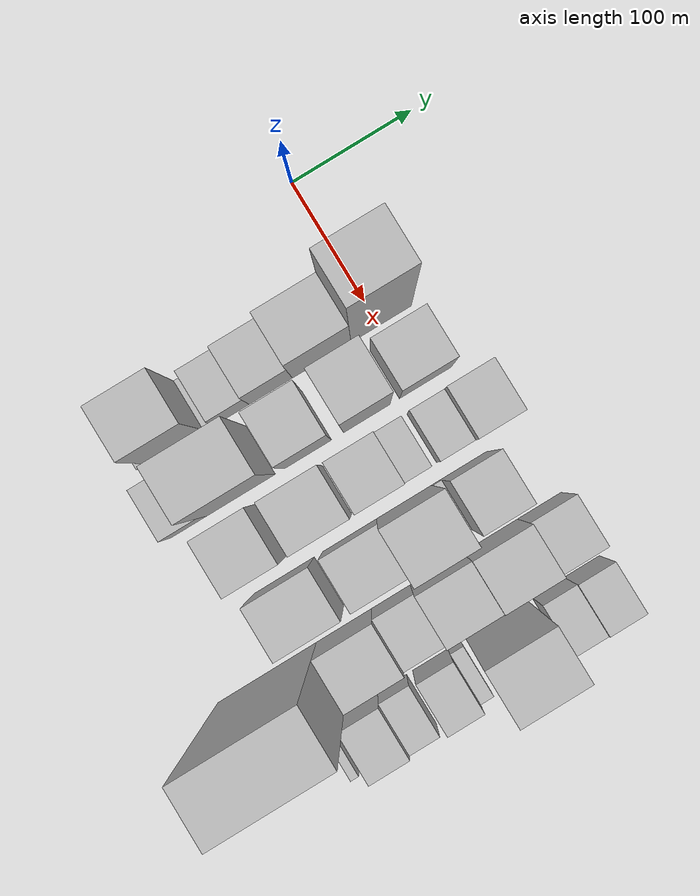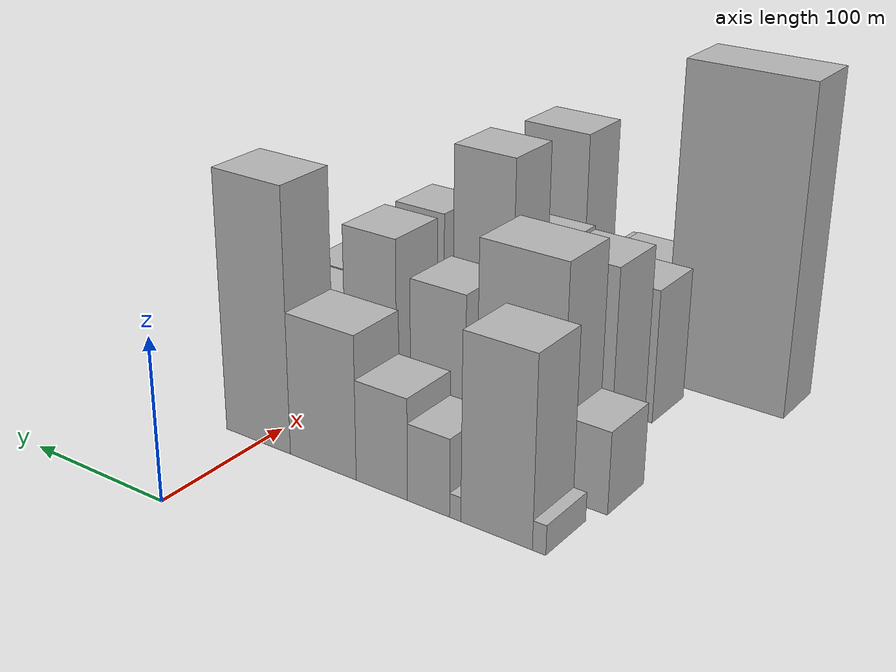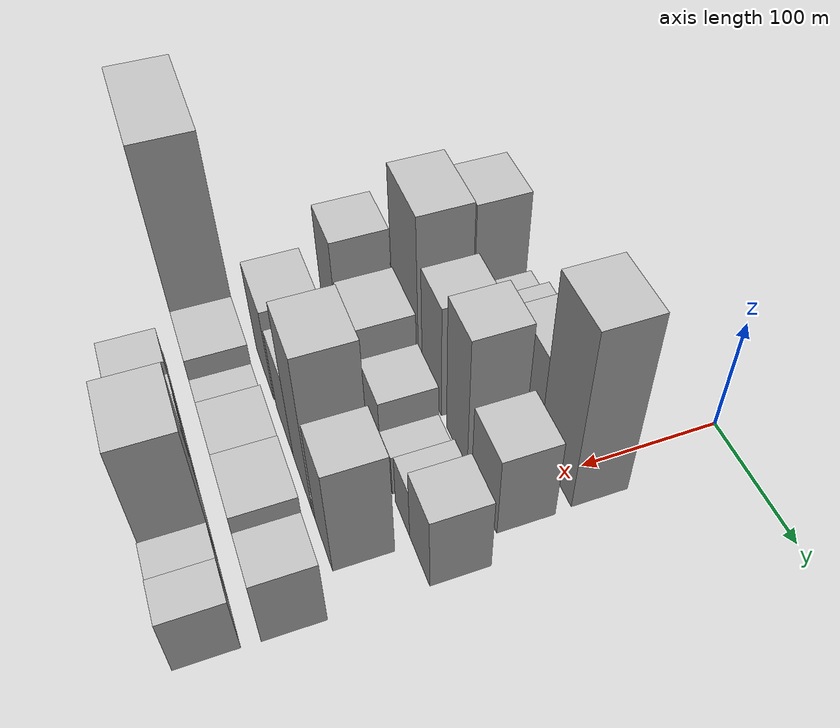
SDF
<sdf version="1.6">
 <world name="default">
  <model name="building_16">
   <static>1</static>
   <pose>100.0000 -192.9283 0 0.000000 0.000000 0.000000</pose>
   <link name="link">
    <pose>0 0 9.00 0 0 0</pose>
    <collision name="collision"><geometry><box><size>40.0000 8.1729 18.0000</size></box></geometry></collision>
    <visual name="visual">
     <cast_shadows>0</cast_shadows>
     <geometry><box><size>40.0000 8.1729 18.0000</size></box></geometry>
     <material>
      <script>
       <uri>model://HANNAS_wall/materials/scripts</uri>
       <uri>model://HANNAS_wall/materials/textures</uri>
       <name>vrc/HANNAS_wall</name>
      </script>
     </material>
    </visual>
   </link>
  </model>
  <model name="building_17">
   <static>1</static>
   <pose>100.0000 -166.1689 0 0.000000 0.000000 0.000000</pose>
   <link name="link">
    <pose>0 0 57.00 0 0 0</pose>
    <collision name="collision"><geometry><box><size>40.0000 45.3458 114.0000</size></box></geometry></collision>
    <visual name="visual">
     <cast_shadows>0</cast_shadows>
     <geometry><box><size>40.0000 45.3458 114.0000</size></box></geometry>
     <material>
      <script>
       <uri>model://HANNAS_wall/materials/scripts</uri>
       <uri>model://HANNAS_wall/materials/textures</uri>
       <name>vrc/HANNAS_wall</name>
      </script>
     </material>
    </visual>
   </link>
  </model>
  <model name="building_18">
   <static>1</static>
   <pose>100.0000 -139.8257 0 0.000000 0.000000 0.000000</pose>
   <link name="link">
    <pose>0 0 7.50 0 0 0</pose>
    <collision name="collision"><geometry><box><size>40.0000 7.3405 15.0000</size></box></geometry></collision>
    <visual name="visual">
     <cast_shadows>0</cast_shadows>
     <geometry><box><size>40.0000 7.3405 15.0000</size></box></geometry>
     <material>
      <script>
       <uri>model://HANNAS_wall/materials/scripts</uri>
       <uri>model://HANNAS_wall/materials/textures</uri>
       <name>vrc/HANNAS_wall</name>
      </script>
     </material>
    </visual>
   </link>
  </model>
  <model name="building_19">
   <static>1</static>
   <pose>100.0000 -121.9752 0 0.000000 0.000000 0.000000</pose>
   <link name="link">
    <pose>0 0 24.00 0 0 0</pose>
    <collision name="collision"><geometry><box><size>40.0000 28.3605 48.0000</size></box></geometry></collision>
    <visual name="visual">
     <cast_shadows>0</cast_shadows>
     <geometry><box><size>40.0000 28.3605 48.0000</size></box></geometry>
     <material>
      <script>
       <uri>model://HANNAS_wall/materials/scripts</uri>
       <uri>model://HANNAS_wall/materials/textures</uri>
       <name>vrc/HANNAS_wall</name>
      </script>
     </material>
    </visual>
   </link>
  </model>
  <model name="building_20">
   <static>1</static>
   <pose>100.0000 -89.8973 0 0.000000 0.000000 0.000000</pose>
   <link name="link">
    <pose>0 0 31.50 0 0 0</pose>
    <collision name="collision"><geometry><box><size>40.0000 35.7953 63.0000</size></box></geometry></collision>
    <visual name="visual">
     <cast_shadows>0</cast_shadows>
     <geometry><box><size>40.0000 35.7953 63.0000</size></box></geometry>
     <material>
      <script>
       <uri>model://HANNAS_wall/materials/scripts</uri>
       <uri>model://HANNAS_wall/materials/textures</uri>
       <name>vrc/HANNAS_wall</name>
      </script>
     </material>
    </visual>
   </link>
  </model>
  <model name="building_21">
   <static>1</static>
   <pose>100.0000 -47.6946 0 0.000000 0.000000 0.000000</pose>
   <link name="link">
    <pose>0 0 45.00 0 0 0</pose>
    <collision name="collision"><geometry><box><size>40.0000 48.6101 90.0000</size></box></geometry></collision>
    <visual name="visual">
     <cast_shadows>0</cast_shadows>
     <geometry><box><size>40.0000 48.6101 90.0000</size></box></geometry>
     <material>
      <script>
       <uri>model://HANNAS_wall/materials/scripts</uri>
       <uri>model://HANNAS_wall/materials/textures</uri>
       <name>vrc/HANNAS_wall</name>
      </script>
     </material>
    </visual>
   </link>
  </model>
  <model name="building_22">
   <static>1</static>
   <pose>100.0000 1.5828 0 0.000000 0.000000 0.000000</pose>
   <link name="link">
    <pose>0 0 82.50 0 0 0</pose>
    <collision name="collision"><geometry><box><size>40.0000 49.9448 165.0000</size></box></geometry></collision>
    <visual name="visual">
     <cast_shadows>0</cast_shadows>
     <geometry><box><size>40.0000 49.9448 165.0000</size></box></geometry>
     <material>
      <script>
       <uri>model://HANNAS_wall/materials/scripts</uri>
       <uri>model://HANNAS_wall/materials/textures</uri>
       <name>vrc/HANNAS_wall</name>
      </script>
     </material>
    </visual>
   </link>
  </model>
  <model name="building_68">
   <static>1</static>
   <pose>152.0000 -188.7724 0 0.000000 0.000000 0.000000</pose>
   <link name="link">
    <pose>0 0 25.50 0 0 0</pose>
    <collision name="collision"><geometry><box><size>40.0000 29.4231 51.0000</size></box></geometry></collision>
    <visual name="visual">
     <cast_shadows>0</cast_shadows>
     <geometry><box><size>40.0000 29.4231 51.0000</size></box></geometry>
     <material>
      <script>
       <uri>model://HANNAS_wall/materials/scripts</uri>
       <uri>model://HANNAS_wall/materials/textures</uri>
       <name>vrc/HANNAS_wall</name>
      </script>
     </material>
    </visual>
   </link>
  </model>
  <model name="building_69">
   <static>1</static>
   <pose>152.0000 -145.8640 0 0.000000 0.000000 0.000000</pose>
   <link name="link">
    <pose>0 0 70.50 0 0 0</pose>
    <collision name="collision"><geometry><box><size>40.0000 56.3937 141.0000</size></box></geometry></collision>
    <visual name="visual">
     <cast_shadows>0</cast_shadows>
     <geometry><box><size>40.0000 56.3937 141.0000</size></box></geometry>
     <material>
      <script>
       <uri>model://HANNAS_wall/materials/scripts</uri>
       <uri>model://HANNAS_wall/materials/textures</uri>
       <name>vrc/HANNAS_wall</name>
      </script>
     </material>
    </visual>
   </link>
  </model>
  <model name="building_70">
   <static>1</static>
   <pose>152.0000 -90.4046 0 0.000000 0.000000 0.000000</pose>
   <link name="link">
    <pose>0 0 52.50 0 0 0</pose>
    <collision name="collision"><geometry><box><size>40.0000 38.5252 105.0000</size></box></geometry></collision>
    <visual name="visual">
     <cast_shadows>0</cast_shadows>
     <geometry><box><size>40.0000 38.5252 105.0000</size></box></geometry>
     <material>
      <script>
       <uri>model://HANNAS_wall/materials/scripts</uri>
       <uri>model://HANNAS_wall/materials/textures</uri>
       <name>vrc/HANNAS_wall</name>
      </script>
     </material>
    </visual>
   </link>
  </model>
  <model name="building_71">
   <static>1</static>
   <pose>152.0000 -42.0251 0 0.000000 0.000000 0.000000</pose>
   <link name="link">
    <pose>0 0 63.00 0 0 0</pose>
    <collision name="collision"><geometry><box><size>40.0000 38.2337 126.0000</size></box></geometry></collision>
    <visual name="visual">
     <cast_shadows>0</cast_shadows>
     <geometry><box><size>40.0000 38.2337 126.0000</size></box></geometry>
     <material>
      <script>
       <uri>model://HANNAS_wall/materials/scripts</uri>
       <uri>model://HANNAS_wall/materials/textures</uri>
       <name>vrc/HANNAS_wall</name>
      </script>
     </material>
    </visual>
   </link>
  </model>
  <model name="building_72">
   <static>1</static>
   <pose>152.0000 6.5891 0 0.000000 0.000000 0.000000</pose>
   <link name="link">
    <pose>0 0 37.50 0 0 0</pose>
    <collision name="collision"><geometry><box><size>40.0000 42.9946 75.0000</size></box></geometry></collision>
    <visual name="visual">
     <cast_shadows>0</cast_shadows>
     <geometry><box><size>40.0000 42.9946 75.0000</size></box></geometry>
     <material>
      <script>
       <uri>model://HANNAS_wall/materials/scripts</uri>
       <uri>model://HANNAS_wall/materials/textures</uri>
       <name>vrc/HANNAS_wall</name>
      </script>
     </material>
    </visual>
   </link>
  </model>
  <model name="building_113">
   <static>1</static>
   <pose>204.0000 -155.4561 0 0.000000 0.000000 0.000000</pose>
   <link name="link">
    <pose>0 0 60.00 0 0 0</pose>
    <collision name="collision"><geometry><box><size>40.0000 39.4269 120.0000</size></box></geometry></collision>
    <visual name="visual">
     <cast_shadows>0</cast_shadows>
     <geometry><box><size>40.0000 39.4269 120.0000</size></box></geometry>
     <material>
      <script>
       <uri>model://HANNAS_wall/materials/scripts</uri>
       <uri>model://HANNAS_wall/materials/textures</uri>
       <name>vrc/HANNAS_wall</name>
      </script>
     </material>
    </visual>
   </link>
  </model>
  <model name="building_114">
   <static>1</static>
   <pose>204.0000 -108.9257 0 0.000000 0.000000 0.000000</pose>
   <link name="link">
    <pose>0 0 45.00 0 0 0</pose>
    <collision name="collision"><geometry><box><size>40.0000 45.6339 90.0000</size></box></geometry></collision>
    <visual name="visual">
     <cast_shadows>0</cast_shadows>
     <geometry><box><size>40.0000 45.6339 90.0000</size></box></geometry>
     <material>
      <script>
       <uri>model://HANNAS_wall/materials/scripts</uri>
       <uri>model://HANNAS_wall/materials/textures</uri>
       <name>vrc/HANNAS_wall</name>
      </script>
     </material>
    </visual>
   </link>
  </model>
  <model name="building_115">
   <static>1</static>
   <pose>204.0000 -63.7250 0 0.000000 0.000000 0.000000</pose>
   <link name="link">
    <pose>0 0 33.00 0 0 0</pose>
    <collision name="collision"><geometry><box><size>40.0000 38.7676 66.0000</size></box></geometry></collision>
    <visual name="visual">
     <cast_shadows>0</cast_shadows>
     <geometry><box><size>40.0000 38.7676 66.0000</size></box></geometry>
     <material>
      <script>
       <uri>model://HANNAS_wall/materials/scripts</uri>
       <uri>model://HANNAS_wall/materials/textures</uri>
       <name>vrc/HANNAS_wall</name>
      </script>
     </material>
    </visual>
   </link>
  </model>
  <model name="building_116">
   <static>1</static>
   <pose>204.0000 -33.2406 0 0.000000 0.000000 0.000000</pose>
   <link name="link">
    <pose>0 0 19.50 0 0 0</pose>
    <collision name="collision"><geometry><box><size>40.0000 22.2011 39.0000</size></box></geometry></collision>
    <visual name="visual">
     <cast_shadows>0</cast_shadows>
     <geometry><box><size>40.0000 22.2011 39.0000</size></box></geometry>
     <material>
      <script>
       <uri>model://HANNAS_wall/materials/scripts</uri>
       <uri>model://HANNAS_wall/materials/textures</uri>
       <name>vrc/HANNAS_wall</name>
      </script>
     </material>
    </visual>
   </link>
  </model>
  <model name="building_117">
   <static>1</static>
   <pose>204.0000 -2.3273 0 0.000000 0.000000 0.000000</pose>
   <link name="link">
    <pose>0 0 24.00 0 0 0</pose>
    <collision name="collision"><geometry><box><size>40.0000 27.6255 48.0000</size></box></geometry></collision>
    <visual name="visual">
     <cast_shadows>0</cast_shadows>
     <geometry><box><size>40.0000 27.6255 48.0000</size></box></geometry>
     <material>
      <script>
       <uri>model://HANNAS_wall/materials/scripts</uri>
       <uri>model://HANNAS_wall/materials/textures</uri>
       <name>vrc/HANNAS_wall</name>
      </script>
     </material>
    </visual>
   </link>
  </model>
  <model name="building_118">
   <static>1</static>
   <pose>204.0000 29.8373 0 0.000000 0.000000 0.000000</pose>
   <link name="link">
    <pose>0 0 34.50 0 0 0</pose>
    <collision name="collision"><geometry><box><size>40.0000 36.7036 69.0000</size></box></geometry></collision>
    <visual name="visual">
     <cast_shadows>0</cast_shadows>
     <geometry><box><size>40.0000 36.7036 69.0000</size></box></geometry>
     <material>
      <script>
       <uri>model://HANNAS_wall/materials/scripts</uri>
       <uri>model://HANNAS_wall/materials/textures</uri>
       <name>vrc/HANNAS_wall</name>
      </script>
     </material>
    </visual>
   </link>
  </model>
  <model name="building_162">
   <static>1</static>
   <pose>256.0000 -149.3006 0 0.000000 0.000000 0.000000</pose>
   <link name="link">
    <pose>0 0 43.50 0 0 0</pose>
    <collision name="collision"><geometry><box><size>40.0000 49.6825 87.0000</size></box></geometry></collision>
    <visual name="visual">
     <cast_shadows>0</cast_shadows>
     <geometry><box><size>40.0000 49.6825 87.0000</size></box></geometry>
     <material>
      <script>
       <uri>model://HANNAS_wall/materials/scripts</uri>
       <uri>model://HANNAS_wall/materials/textures</uri>
       <name>vrc/HANNAS_wall</name>
      </script>
     </material>
    </visual>
   </link>
  </model>
  <model name="building_163">
   <static>1</static>
   <pose>256.0000 -95.3129 0 0.000000 0.000000 0.000000</pose>
   <link name="link">
    <pose>0 0 39.00 0 0 0</pose>
    <collision name="collision"><geometry><box><size>40.0000 44.2929 78.0000</size></box></geometry></collision>
    <visual name="visual">
     <cast_shadows>0</cast_shadows>
     <geometry><box><size>40.0000 44.2929 78.0000</size></box></geometry>
     <material>
      <script>
       <uri>model://HANNAS_wall/materials/scripts</uri>
       <uri>model://HANNAS_wall/materials/textures</uri>
       <name>vrc/HANNAS_wall</name>
      </script>
     </material>
    </visual>
   </link>
  </model>
  <model name="building_164">
   <static>1</static>
   <pose>256.0000 -50.4108 0 0.000000 0.000000 0.000000</pose>
   <link name="link">
    <pose>0 0 73.50 0 0 0</pose>
    <collision name="collision"><geometry><box><size>40.0000 45.5113 147.0000</size></box></geometry></collision>
    <visual name="visual">
     <cast_shadows>0</cast_shadows>
     <geometry><box><size>40.0000 45.5113 147.0000</size></box></geometry>
     <material>
      <script>
       <uri>model://HANNAS_wall/materials/scripts</uri>
       <uri>model://HANNAS_wall/materials/textures</uri>
       <name>vrc/HANNAS_wall</name>
      </script>
     </material>
    </visual>
   </link>
  </model>
  <model name="building_165">
   <static>1</static>
   <pose>256.0000 -24.0487 0 0.000000 0.000000 0.000000</pose>
   <link name="link">
    <pose>0 0 9.00 0 0 0</pose>
    <collision name="collision"><geometry><box><size>40.0000 7.2129 18.0000</size></box></geometry></collision>
    <visual name="visual">
     <cast_shadows>0</cast_shadows>
     <geometry><box><size>40.0000 7.2129 18.0000</size></box></geometry>
     <material>
      <script>
       <uri>model://HANNAS_wall/materials/scripts</uri>
       <uri>model://HANNAS_wall/materials/textures</uri>
       <name>vrc/HANNAS_wall</name>
      </script>
     </material>
    </visual>
   </link>
  </model>
  <model name="building_166">
   <static>1</static>
   <pose>256.0000 -1.1761 0 0.000000 0.000000 0.000000</pose>
   <link name="link">
    <pose>0 0 49.50 0 0 0</pose>
    <collision name="collision"><geometry><box><size>40.0000 38.5323 99.0000</size></box></geometry></collision>
    <visual name="visual">
     <cast_shadows>0</cast_shadows>
     <geometry><box><size>40.0000 38.5323 99.0000</size></box></geometry>
     <material>
      <script>
       <uri>model://HANNAS_wall/materials/scripts</uri>
       <uri>model://HANNAS_wall/materials/textures</uri>
       <name>vrc/HANNAS_wall</name>
      </script>
     </material>
    </visual>
   </link>
  </model>
  <model name="building_213">
   <static>1</static>
   <pose>308.0000 -194.8196 0 0.000000 0.000000 0.000000</pose>
   <link name="link">
    <pose>0 0 105.00 0 0 0</pose>
    <collision name="collision"><geometry><box><size>40.0000 80.9613 210.0000</size></box></geometry></collision>
    <visual name="visual">
     <cast_shadows>0</cast_shadows>
     <geometry><box><size>40.0000 80.9613 210.0000</size></box></geometry>
     <material>
      <script>
       <uri>model://HANNAS_wall/materials/scripts</uri>
       <uri>model://HANNAS_wall/materials/textures</uri>
       <name>vrc/HANNAS_wall</name>
      </script>
     </material>
    </visual>
   </link>
  </model>
  <model name="building_214">
   <static>1</static>
   <pose>308.0000 -131.7458 0 0.000000 0.000000 0.000000</pose>
   <link name="link">
    <pose>0 0 39.00 0 0 0</pose>
    <collision name="collision"><geometry><box><size>40.0000 45.1864 78.0000</size></box></geometry></collision>
    <visual name="visual">
     <cast_shadows>0</cast_shadows>
     <geometry><box><size>40.0000 45.1864 78.0000</size></box></geometry>
     <material>
      <script>
       <uri>model://HANNAS_wall/materials/scripts</uri>
       <uri>model://HANNAS_wall/materials/textures</uri>
       <name>vrc/HANNAS_wall</name>
      </script>
     </material>
    </visual>
   </link>
  </model>
  <model name="building_215">
   <static>1</static>
   <pose>308.0000 -93.1461 0 0.000000 0.000000 0.000000</pose>
   <link name="link">
    <pose>0 0 30.00 0 0 0</pose>
    <collision name="collision"><geometry><box><size>40.0000 32.0130 60.0000</size></box></geometry></collision>
    <visual name="visual">
     <cast_shadows>0</cast_shadows>
     <geometry><box><size>40.0000 32.0130 60.0000</size></box></geometry>
     <material>
      <script>
       <uri>model://HANNAS_wall/materials/scripts</uri>
       <uri>model://HANNAS_wall/materials/textures</uri>
       <name>vrc/HANNAS_wall</name>
      </script>
     </material>
    </visual>
   </link>
  </model>
  <model name="building_216">
   <static>1</static>
   <pose>308.0000 -55.4847 0 0.000000 0.000000 0.000000</pose>
   <link name="link">
    <pose>0 0 37.50 0 0 0</pose>
    <collision name="collision"><geometry><box><size>40.0000 43.3097 75.0000</size></box></geometry></collision>
    <visual name="visual">
     <cast_shadows>0</cast_shadows>
     <geometry><box><size>40.0000 43.3097 75.0000</size></box></geometry>
     <material>
      <script>
       <uri>model://HANNAS_wall/materials/scripts</uri>
       <uri>model://HANNAS_wall/materials/textures</uri>
       <name>vrc/HANNAS_wall</name>
      </script>
     </material>
    </visual>
   </link>
  </model>
  <model name="building_217">
   <static>1</static>
   <pose>308.0000 -11.0088 0 0.000000 0.000000 0.000000</pose>
   <link name="link">
    <pose>0 0 39.00 0 0 0</pose>
    <collision name="collision"><geometry><box><size>40.0000 45.6421 78.0000</size></box></geometry></collision>
    <visual name="visual">
     <cast_shadows>0</cast_shadows>
     <geometry><box><size>40.0000 45.6421 78.0000</size></box></geometry>
     <material>
      <script>
       <uri>model://HANNAS_wall/materials/scripts</uri>
       <uri>model://HANNAS_wall/materials/textures</uri>
       <name>vrc/HANNAS_wall</name>
      </script>
     </material>
    </visual>
   </link>
  </model>
  <model name="building_218">
   <static>1</static>
   <pose>308.0000 29.9184 0 0.000000 0.000000 0.000000</pose>
   <link name="link">
    <pose>0 0 31.50 0 0 0</pose>
    <collision name="collision"><geometry><box><size>40.0000 36.2124 63.0000</size></box></geometry></collision>
    <visual name="visual">
     <cast_shadows>0</cast_shadows>
     <geometry><box><size>40.0000 36.2124 63.0000</size></box></geometry>
     <material>
      <script>
       <uri>model://HANNAS_wall/materials/scripts</uri>
       <uri>model://HANNAS_wall/materials/textures</uri>
       <name>vrc/HANNAS_wall</name>
      </script>
     </material>
    </visual>
   </link>
  </model>
  <model name="building_261">
   <static>1</static>
   <pose>360.0000 -178.6959 0 0.000000 0.000000 0.000000</pose>
   <link name="link">
    <pose>0 0 7.50 0 0 0</pose>
    <collision name="collision"><geometry><box><size>40.0000 6.5528 15.0000</size></box></geometry></collision>
    <visual name="visual">
     <cast_shadows>0</cast_shadows>
     <geometry><box><size>40.0000 6.5528 15.0000</size></box></geometry>
     <material>
      <script>
       <uri>model://HANNAS_wall/materials/scripts</uri>
       <uri>model://HANNAS_wall/materials/textures</uri>
       <name>vrc/HANNAS_wall</name>
      </script>
     </material>
    </visual>
   </link>
  </model>
  <model name="building_262">
   <static>1</static>
   <pose>360.0000 -151.5653 0 0.000000 0.000000 0.000000</pose>
   <link name="link">
    <pose>0 0 27.00 0 0 0</pose>
    <collision name="collision"><geometry><box><size>40.0000 31.7084 54.0000</size></box></geometry></collision>
    <visual name="visual">
     <cast_shadows>0</cast_shadows>
     <geometry><box><size>40.0000 31.7084 54.0000</size></box></geometry>
     <material>
      <script>
       <uri>model://HANNAS_wall/materials/scripts</uri>
       <uri>model://HANNAS_wall/materials/textures</uri>
       <name>vrc/HANNAS_wall</name>
      </script>
     </material>
    </visual>
   </link>
  </model>
  <model name="building_263">
   <static>1</static>
   <pose>360.0000 -123.7879 0 0.000000 0.000000 0.000000</pose>
   <link name="link">
    <pose>0 0 21.00 0 0 0</pose>
    <collision name="collision"><geometry><box><size>40.0000 23.8465 42.0000</size></box></geometry></collision>
    <visual name="visual">
     <cast_shadows>0</cast_shadows>
     <geometry><box><size>40.0000 23.8465 42.0000</size></box></geometry>
     <material>
      <script>
       <uri>model://HANNAS_wall/materials/scripts</uri>
       <uri>model://HANNAS_wall/materials/textures</uri>
       <name>vrc/HANNAS_wall</name>
      </script>
     </material>
    </visual>
   </link>
  </model>
  <model name="building_264">
   <static>1</static>
   <pose>360.0000 -92.4291 0 0.000000 0.000000 0.000000</pose>
   <link name="link">
    <pose>0 0 27.00 0 0 0</pose>
    <collision name="collision"><geometry><box><size>40.0000 28.8710 54.0000</size></box></geometry></collision>
    <visual name="visual">
     <cast_shadows>0</cast_shadows>
     <geometry><box><size>40.0000 28.8710 54.0000</size></box></geometry>
     <material>
      <script>
       <uri>model://HANNAS_wall/materials/scripts</uri>
       <uri>model://HANNAS_wall/materials/textures</uri>
       <name>vrc/HANNAS_wall</name>
      </script>
     </material>
    </visual>
   </link>
  </model>
  <model name="building_265">
   <static>1</static>
   <pose>360.0000 -72.6670 0 0.000000 0.000000 0.000000</pose>
   <link name="link">
    <pose>0 0 12.00 0 0 0</pose>
    <collision name="collision"><geometry><box><size>40.0000 10.6532 24.0000</size></box></geometry></collision>
    <visual name="visual">
     <cast_shadows>0</cast_shadows>
     <geometry><box><size>40.0000 10.6532 24.0000</size></box></geometry>
     <material>
      <script>
       <uri>model://HANNAS_wall/materials/scripts</uri>
       <uri>model://HANNAS_wall/materials/textures</uri>
       <name>vrc/HANNAS_wall</name>
      </script>
     </material>
    </visual>
   </link>
  </model>
  <model name="building_266">
   <static>1</static>
   <pose>360.0000 -37.8994 0 0.000000 0.000000 0.000000</pose>
   <link name="link">
    <pose>0 0 66.00 0 0 0</pose>
    <collision name="collision"><geometry><box><size>40.0000 50.8821 132.0000</size></box></geometry></collision>
    <visual name="visual">
     <cast_shadows>0</cast_shadows>
     <geometry><box><size>40.0000 50.8821 132.0000</size></box></geometry>
     <material>
      <script>
       <uri>model://HANNAS_wall/materials/scripts</uri>
       <uri>model://HANNAS_wall/materials/textures</uri>
       <name>vrc/HANNAS_wall</name>
      </script>
     </material>
    </visual>
   </link>
  </model>
  <model name="building_267">
   <static>1</static>
   <pose>360.0000 4.9132 0 0.000000 0.000000 0.000000</pose>
   <link name="link">
    <pose>0 0 25.50 0 0 0</pose>
    <collision name="collision"><geometry><box><size>40.0000 26.7430 51.0000</size></box></geometry></collision>
    <visual name="visual">
     <cast_shadows>0</cast_shadows>
     <geometry><box><size>40.0000 26.7430 51.0000</size></box></geometry>
     <material>
      <script>
       <uri>model://HANNAS_wall/materials/scripts</uri>
       <uri>model://HANNAS_wall/materials/textures</uri>
       <name>vrc/HANNAS_wall</name>
      </script>
     </material>
    </visual>
   </link>
  </model>
  <model name="building_268">
   <static>1</static>
   <pose>360.0000 32.9258 0 0.000000 0.000000 0.000000</pose>
   <link name="link">
    <pose>0 0 27.00 0 0 0</pose>
    <collision name="collision"><geometry><box><size>40.0000 29.2823 54.0000</size></box></geometry></collision>
    <visual name="visual">
     <cast_shadows>0</cast_shadows>
     <geometry><box><size>40.0000 29.2823 54.0000</size></box></geometry>
     <material>
      <script>
       <uri>model://HANNAS_wall/materials/scripts</uri>
       <uri>model://HANNAS_wall/materials/textures</uri>
       <name>vrc/HANNAS_wall</name>
      </script>
     </material>
    </visual>
   </link>
  </model>
 </world>
</sdf>
